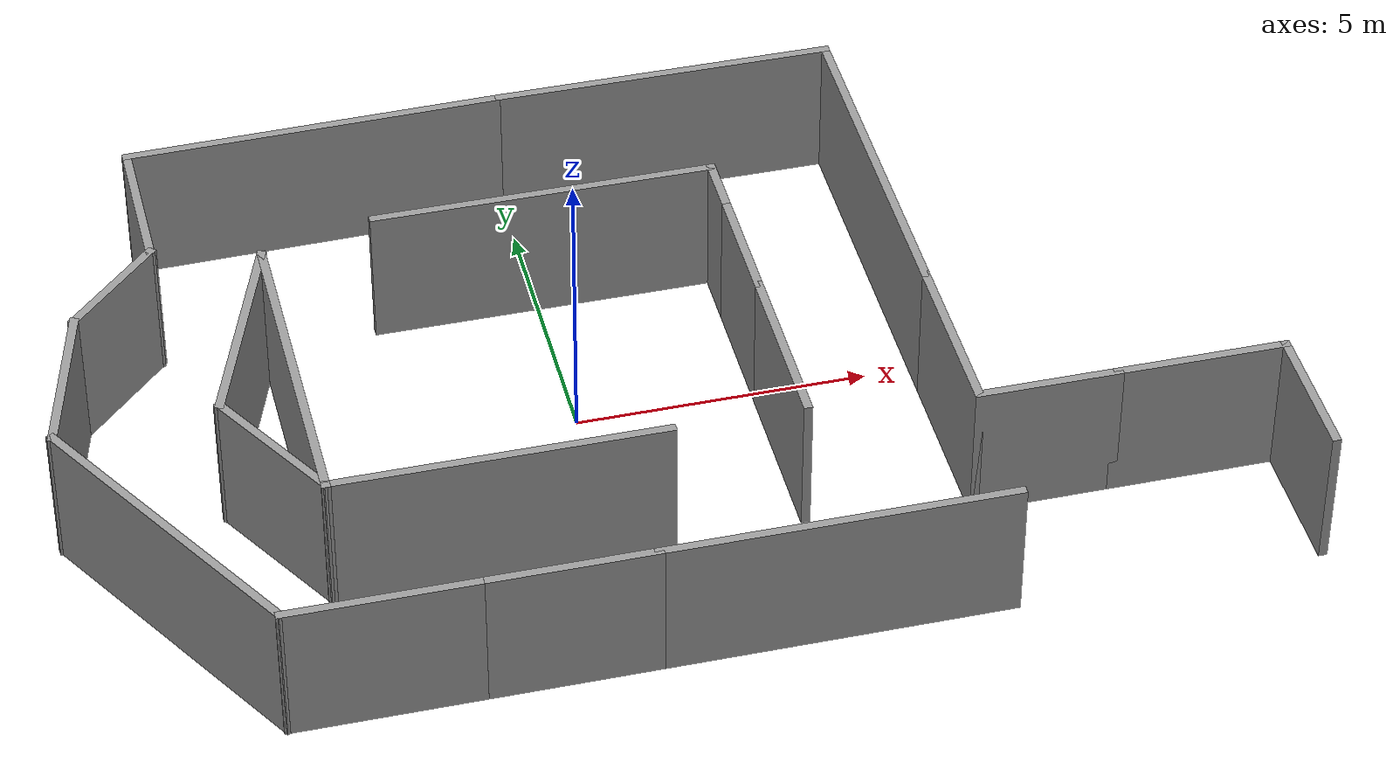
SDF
<?xml version='1.0'?>
<sdf version='1.7'>
  <model name='Untitled2'>
    <pose>1.11627 -0.063086 0 0 -0 0</pose>
    <link name='Wall_12'>
      <collision name='Wall_12_Collision'>
        <geometry>
          <box>
            <size>6 0.15 2.5</size>
          </box>
        </geometry>
        <pose>0 0 1.25 0 -0 0</pose>
      </collision>
      <visual name='Wall_12_Visual'>
        <pose>0 0 1.25 0 -0 0</pose>
        <geometry>
          <box>
            <size>6 0.15 2.5</size>
          </box>
        </geometry>
        <material>
          <script>
            <uri>file://media/materials/scripts/gazebo.material</uri>
            <name>Gazebo/Grey</name>
          </script>
          <ambient>1 1 1 1</ambient>
        </material>
        <meta>
          <layer>0</layer>
        </meta>
      </visual>
      <pose>1.78873 -5.88691 0 0 -0 3.14159</pose>
    </link>
    <link name='Wall_13'>
      <collision name='Wall_13_Collision'>
        <geometry>
          <box>
            <size>3 0.15 2.5</size>
          </box>
        </geometry>
        <pose>0 0 1.25 0 -0 0</pose>
      </collision>
      <visual name='Wall_13_Visual'>
        <pose>0 0 1.25 0 -0 0</pose>
        <geometry>
          <box>
            <size>3 0.15 2.5</size>
          </box>
        </geometry>
        <material>
          <script>
            <uri>file://media/materials/scripts/gazebo.material</uri>
            <name>Gazebo/Grey</name>
          </script>
          <ambient>1 1 1 1</ambient>
        </material>
        <meta>
          <layer>0</layer>
        </meta>
      </visual>
      <pose>-2.56127 -5.88691 0 0 -0 3.14159</pose>
    </link>
    <link name='Wall_14'>
      <collision name='Wall_14_Collision'>
        <geometry>
          <box>
            <size>3.25 0.15 2.5</size>
          </box>
        </geometry>
        <pose>0 0 1.25 0 -0 0</pose>
      </collision>
      <visual name='Wall_14_Visual'>
        <pose>0 0 1.25 0 -0 0</pose>
        <geometry>
          <box>
            <size>3.25 0.15 2.5</size>
          </box>
        </geometry>
        <material>
          <script>
            <uri>file://media/materials/scripts/gazebo.material</uri>
            <name>Gazebo/Grey</name>
          </script>
          <ambient>1 1 1 1</ambient>
        </material>
        <meta>
          <layer>0</layer>
        </meta>
      </visual>
      <pose>-5.53627 -5.88691 0 0 -0 3.14159</pose>
    </link>
    <link name='Wall_15'>
      <collision name='Wall_15_Collision'>
        <geometry>
          <box>
            <size>5.75 0.15 2.5</size>
          </box>
        </geometry>
        <pose>0 0 1.25 0 -0 0</pose>
      </collision>
      <visual name='Wall_15_Visual'>
        <pose>0 0 1.25 0 -0 0</pose>
        <geometry>
          <box>
            <size>5.75 0.15 2.5</size>
          </box>
        </geometry>
        <material>
          <script>
            <uri>file://media/materials/scripts/gazebo.material</uri>
            <name>Gazebo/Grey</name>
          </script>
          <ambient>1 1 1 1</ambient>
        </material>
        <meta>
          <layer>0</layer>
        </meta>
      </visual>
      <pose>-8.48627 -3.46204 0 0 -0 2.0944</pose>
    </link>
    <link name='Wall_16'>
      <collision name='Wall_16_Collision'>
        <geometry>
          <box>
            <size>3 0.15 2.5</size>
          </box>
        </geometry>
        <pose>0 0 1.25 0 -0 0</pose>
      </collision>
      <visual name='Wall_16_Visual'>
        <pose>0 0 1.25 0 -0 0</pose>
        <geometry>
          <box>
            <size>3 0.15 2.5</size>
          </box>
        </geometry>
        <material>
          <script>
            <uri>file://media/materials/scripts/gazebo.material</uri>
            <name>Gazebo/Grey</name>
          </script>
          <ambient>1 1 1 1</ambient>
        </material>
        <meta>
          <layer>0</layer>
        </meta>
      </visual>
      <pose>-9.51746 0.339272 0 0 -0 1.309</pose>
    </link>
    <link name='Wall_17'>
      <collision name='Wall_17_Collision'>
        <geometry>
          <box>
            <size>2.25 0.15 2.5</size>
          </box>
        </geometry>
        <pose>0 0 1.25 0 -0 0</pose>
      </collision>
      <visual name='Wall_17_Visual'>
        <pose>0 0 1.25 0 -0 0</pose>
        <geometry>
          <box>
            <size>2.25 0.15 2.5</size>
          </box>
        </geometry>
        <material>
          <script>
            <uri>file://media/materials/scripts/gazebo.material</uri>
            <name>Gazebo/Grey</name>
          </script>
          <ambient>1 1 1 1</ambient>
        </material>
        <meta>
          <layer>0</layer>
        </meta>
      </visual>
      <pose>-8.40618 2.45818 0 0 -0 0.785398</pose>
    </link>
    <link name='Wall_18'>
      <collision name='Wall_18_Collision'>
        <geometry>
          <box>
            <size>2.75 0.15 2.5</size>
          </box>
        </geometry>
        <pose>0 0 1.25 0 -0 0</pose>
      </collision>
      <visual name='Wall_18_Visual'>
        <pose>0 0 1.25 0 -0 0</pose>
        <geometry>
          <box>
            <size>2.75 0.15 2.5</size>
          </box>
        </geometry>
        <material>
          <script>
            <uri>file://media/materials/scripts/gazebo.material</uri>
            <name>Gazebo/Grey</name>
          </script>
          <ambient>1 1 1 1</ambient>
        </material>
        <meta>
          <layer>0</layer>
        </meta>
      </visual>
      <pose>-7.66371 4.50064 0 0 -0 1.5708</pose>
    </link>
    <link name='Wall_19'>
      <collision name='Wall_19_Collision'>
        <geometry>
          <box>
            <size>6.67841 0.15 2.5</size>
          </box>
        </geometry>
        <pose>0 0 1.25 0 -0 0</pose>
      </collision>
      <visual name='Wall_19_Visual'>
        <pose>0 0 1.25 0 -0 0</pose>
        <geometry>
          <box>
            <size>6.67841 0.15 2.5</size>
          </box>
        </geometry>
        <material>
          <script>
            <uri>file://media/materials/scripts/gazebo.material</uri>
            <name>Gazebo/Grey</name>
          </script>
          <ambient>1 1 1 1</ambient>
        </material>
        <meta>
          <layer>0</layer>
        </meta>
      </visual>
      <pose>-4.39999 5.85686 0 0 -0 0.017225</pose>
    </link>
    <link name='Wall_23'>
      <collision name='Wall_23_Collision'>
        <geometry>
          <box>
            <size>2.25 0.15 2.5</size>
          </box>
        </geometry>
        <pose>0 0 1.25 0 -0 0</pose>
      </collision>
      <visual name='Wall_23_Visual'>
        <pose>0 0 1.25 0 -0 0</pose>
        <geometry>
          <box>
            <size>2.25 0.15 2.5</size>
          </box>
        </geometry>
        <material>
          <script>
            <uri>file://media/materials/scripts/gazebo.material</uri>
            <name>Gazebo/Grey</name>
          </script>
          <ambient>1 1 1 1</ambient>
        </material>
        <meta>
          <layer>0</layer>
        </meta>
      </visual>
      <pose>1.96373 1.01309 0 0 -0 1.5708</pose>
    </link>
    <link name='Wall_25'>
      <collision name='Wall_25_Collision'>
        <geometry>
          <box>
            <size>1.25 0.15 2.5</size>
          </box>
        </geometry>
        <pose>0 0 1.25 0 -0 0</pose>
      </collision>
      <visual name='Wall_25_Visual'>
        <pose>0 0 1.25 0 -0 0</pose>
        <geometry>
          <box>
            <size>1.25 0.15 2.5</size>
          </box>
        </geometry>
        <material>
          <script>
            <uri>file://media/materials/scripts/gazebo.material</uri>
            <name>Gazebo/Grey</name>
          </script>
          <ambient>1 1 1 1</ambient>
        </material>
        <meta>
          <layer>0</layer>
        </meta>
      </visual>
      <pose>1.96373 2.61309 0 0 -0 1.5708</pose>
    </link>
    <link name='Wall_26'>
      <collision name='Wall_26_Collision'>
        <geometry>
          <box>
            <size>6 0.15 2.5</size>
          </box>
        </geometry>
        <pose>0 0 1.25 0 -0 0</pose>
      </collision>
      <visual name='Wall_26_Visual'>
        <pose>0 0 1.25 0 -0 0</pose>
        <geometry>
          <box>
            <size>6 0.15 2.5</size>
          </box>
        </geometry>
        <material>
          <script>
            <uri>file://media/materials/scripts/gazebo.material</uri>
            <name>Gazebo/Grey</name>
          </script>
          <ambient>1 1 1 1</ambient>
        </material>
        <meta>
          <layer>0</layer>
        </meta>
      </visual>
      <pose>-0.961274 3.16309 0 0 -0 3.14159</pose>
    </link>
    <link name='Wall_28'>
      <collision name='Wall_28_Collision'>
        <geometry>
          <box>
            <size>3.25 0.15 2.5</size>
          </box>
        </geometry>
        <pose>0 0 1.25 0 -0 0</pose>
      </collision>
      <visual name='Wall_28_Visual'>
        <pose>0 0 1.25 0 -0 0</pose>
        <geometry>
          <box>
            <size>3.25 0.15 2.5</size>
          </box>
        </geometry>
        <material>
          <script>
            <uri>file://media/materials/scripts/gazebo.material</uri>
            <name>Gazebo/Grey</name>
          </script>
          <ambient>1 1 1 1</ambient>
        </material>
        <meta>
          <layer>0</layer>
        </meta>
      </visual>
      <pose>1.96373 -1.58691 0 0 -0 -1.5708</pose>
    </link>
    <link name='Wall_30'>
      <collision name='Wall_30_Collision'>
        <geometry>
          <box>
            <size>6 0.15 2.5</size>
          </box>
        </geometry>
        <pose>0 0 1.25 0 -0 0</pose>
      </collision>
      <visual name='Wall_30_Visual'>
        <pose>0 0 1.25 0 -0 0</pose>
        <geometry>
          <box>
            <size>6 0.15 2.5</size>
          </box>
        </geometry>
        <material>
          <script>
            <uri>file://media/materials/scripts/gazebo.material</uri>
            <name>Gazebo/Grey</name>
          </script>
          <ambient>1 1 1 1</ambient>
        </material>
        <meta>
          <layer>0</layer>
        </meta>
      </visual>
      <pose>-5.87532 -0.230534 0 0 -0 -1.5708</pose>
    </link>
    <link name='Wall_31'>
      <collision name='Wall_31_Collision'>
        <geometry>
          <box>
            <size>5.75 0.15 2.5</size>
          </box>
        </geometry>
        <pose>0 0 1.25 0 -0 0</pose>
      </collision>
      <visual name='Wall_31_Visual'>
        <pose>0 0 1.25 0 -0 0</pose>
        <geometry>
          <box>
            <size>5.75 0.15 2.5</size>
          </box>
        </geometry>
        <material>
          <script>
            <uri>file://media/materials/scripts/gazebo.material</uri>
            <name>Gazebo/Grey</name>
          </script>
          <ambient>1 1 1 1</ambient>
        </material>
        <meta>
          <layer>0</layer>
        </meta>
      </visual>
      <pose>-3.07532 -3.15553 0 0 -0 0</pose>
    </link>
    <link name='Wall_33'>
      <collision name='Wall_33_Collision'>
        <geometry>
          <box>
            <size>2.75 0.15 2.5</size>
          </box>
        </geometry>
        <pose>0 0 1.25 0 -0 0</pose>
      </collision>
      <visual name='Wall_33_Visual'>
        <pose>0 0 1.25 0 -0 0</pose>
        <geometry>
          <box>
            <size>2.75 0.15 2.5</size>
          </box>
        </geometry>
        <material>
          <script>
            <uri>file://media/materials/scripts/gazebo.material</uri>
            <name>Gazebo/Grey</name>
          </script>
          <ambient>1 1 1 1</ambient>
        </material>
        <meta>
          <layer>0</layer>
        </meta>
      </visual>
      <pose>-6.52532 -2.0297 0 0 -0 2.0944</pose>
    </link>
    <link name='Wall_34'>
      <collision name='Wall_34_Collision'>
        <geometry>
          <box>
            <size>3.97596 0.15 2.5</size>
          </box>
        </geometry>
        <pose>0 0 1.25 0 -0 0</pose>
      </collision>
      <visual name='Wall_34_Visual'>
        <pose>0 0 1.25 0 -0 0</pose>
        <geometry>
          <box>
            <size>3.97596 0.15 2.5</size>
          </box>
        </geometry>
        <material>
          <script>
            <uri>file://media/materials/scripts/gazebo.material</uri>
            <name>Gazebo/Grey</name>
          </script>
          <ambient>1 1 1 1</ambient>
        </material>
        <meta>
          <layer>0</layer>
        </meta>
      </visual>
      <pose>-6.52532 0.895299 0 0 -0 1.22411</pose>
    </link>
    <link name='Wall_36'>
      <collision name='Wall_36_Collision'>
        <geometry>
          <box>
            <size>2.5 0.15 2.5</size>
          </box>
        </geometry>
        <pose>0 0 1.25 0 -0 0</pose>
      </collision>
      <visual name='Wall_36_Visual'>
        <pose>0 0 1.25 0 -0 0</pose>
        <geometry>
          <box>
            <size>2.5 0.15 2.5</size>
          </box>
        </geometry>
        <material>
          <script>
            <uri>file://media/materials/scripts/gazebo.material</uri>
            <name>Gazebo/Grey</name>
          </script>
          <ambient>1 1 1 1</ambient>
        </material>
        <meta>
          <layer>0</layer>
        </meta>
      </visual>
      <pose>5.88873 -3.53691 0 0 -0 0</pose>
    </link>
    <link name='Wall_37'>
      <collision name='Wall_37_Collision'>
        <geometry>
          <box>
            <size>3 0.15 2.5</size>
          </box>
        </geometry>
        <pose>0 0 1.25 0 -0 0</pose>
      </collision>
      <visual name='Wall_37_Visual'>
        <pose>0 0 1.25 0 -0 0</pose>
        <geometry>
          <box>
            <size>3 0.15 2.5</size>
          </box>
        </geometry>
        <material>
          <script>
            <uri>file://media/materials/scripts/gazebo.material</uri>
            <name>Gazebo/Grey</name>
          </script>
          <ambient>1 1 1 1</ambient>
        </material>
        <meta>
          <layer>0</layer>
        </meta>
      </visual>
      <pose>8.48873 -3.53691 0 0 -0 0</pose>
    </link>
    <link name='Wall_38'>
      <collision name='Wall_38_Collision'>
        <geometry>
          <box>
            <size>2.5 0.15 2.5</size>
          </box>
        </geometry>
        <pose>0 0 1.25 0 -0 0</pose>
      </collision>
      <visual name='Wall_38_Visual'>
        <pose>0 0 1.25 0 -0 0</pose>
        <geometry>
          <box>
            <size>2.5 0.15 2.5</size>
          </box>
        </geometry>
        <material>
          <script>
            <uri>file://media/materials/scripts/gazebo.material</uri>
            <name>Gazebo/Grey</name>
          </script>
          <ambient>1 1 1 1</ambient>
        </material>
        <meta>
          <layer>0</layer>
        </meta>
      </visual>
      <pose>9.91373 -4.71191 0 0 -0 -1.5708</pose>
    </link>
    <link name='Wall_7'>
      <collision name='Wall_7_Collision'>
        <geometry>
          <box>
            <size>6 0.15 2.5</size>
          </box>
        </geometry>
        <pose>0 0 1.25 0 -0 0</pose>
      </collision>
      <visual name='Wall_7_Visual'>
        <pose>0 0 1.25 0 -0 0</pose>
        <geometry>
          <box>
            <size>6 0.15 2.5</size>
          </box>
        </geometry>
        <material>
          <script>
            <uri>file://media/materials/scripts/gazebo.material</uri>
            <name>Gazebo/Grey</name>
          </script>
          <ambient>1 1 1 1</ambient>
        </material>
        <meta>
          <layer>0</layer>
        </meta>
      </visual>
      <pose>1.78873 5.91309 0 0 -0 0</pose>
    </link>
    <link name='Wall_8'>
      <collision name='Wall_8_Collision'>
        <geometry>
          <box>
            <size>6.5 0.15 2.5</size>
          </box>
        </geometry>
        <pose>0 0 1.25 0 -0 0</pose>
      </collision>
      <visual name='Wall_8_Visual'>
        <pose>0 0 1.25 0 -0 0</pose>
        <geometry>
          <box>
            <size>6.5 0.15 2.5</size>
          </box>
        </geometry>
        <material>
          <script>
            <uri>file://media/materials/scripts/gazebo.material</uri>
            <name>Gazebo/Grey</name>
          </script>
          <ambient>1 1 1 1</ambient>
        </material>
        <meta>
          <layer>0</layer>
        </meta>
      </visual>
      <pose>4.71373 2.73809 0 0 -0 -1.5708</pose>
    </link>
    <link name='Wall_9'>
      <collision name='Wall_9_Collision'>
        <geometry>
          <box>
            <size>3.25 0.15 2.5</size>
          </box>
        </geometry>
        <pose>0 0 1.25 0 -0 0</pose>
      </collision>
      <visual name='Wall_9_Visual'>
        <pose>0 0 1.25 0 -0 0</pose>
        <geometry>
          <box>
            <size>3.25 0.15 2.5</size>
          </box>
        </geometry>
        <material>
          <script>
            <uri>file://media/materials/scripts/gazebo.material</uri>
            <name>Gazebo/Grey</name>
          </script>
          <ambient>1 1 1 1</ambient>
        </material>
        <meta>
          <layer>0</layer>
        </meta>
      </visual>
      <pose>4.71373 -1.98691 0 0 -0 -1.5708</pose>
    </link>
    <static>1</static>
  </model>
</sdf>
